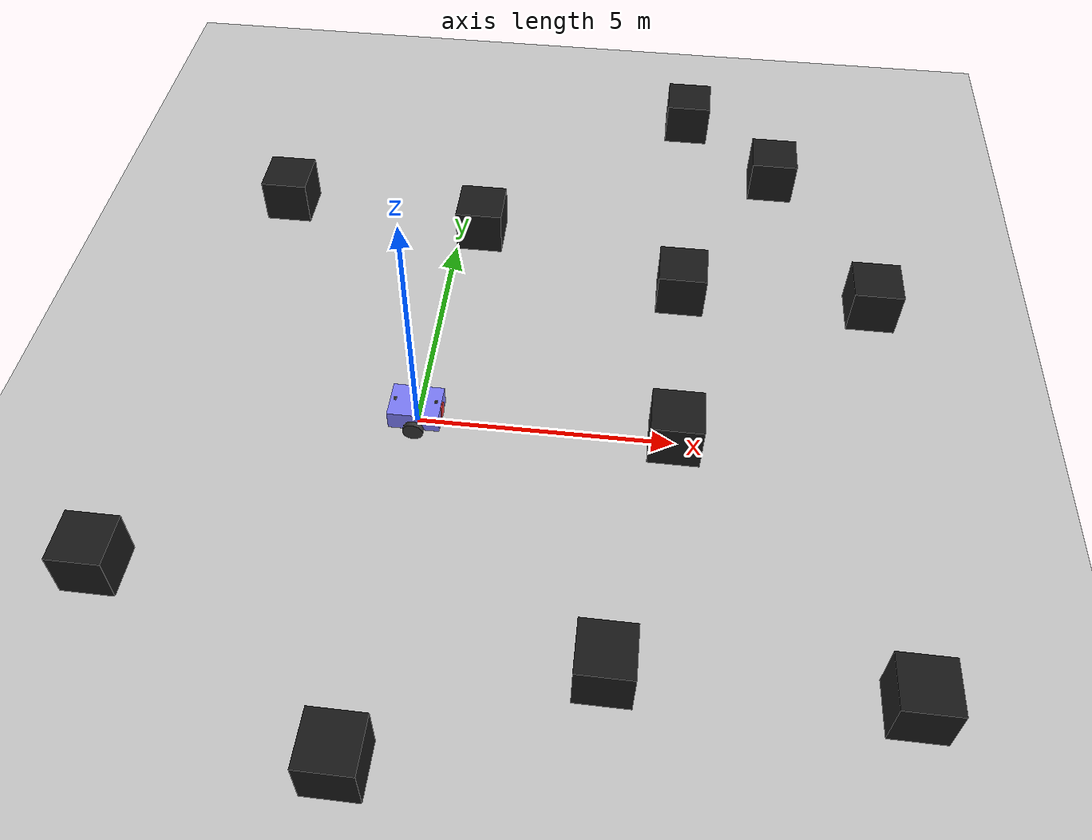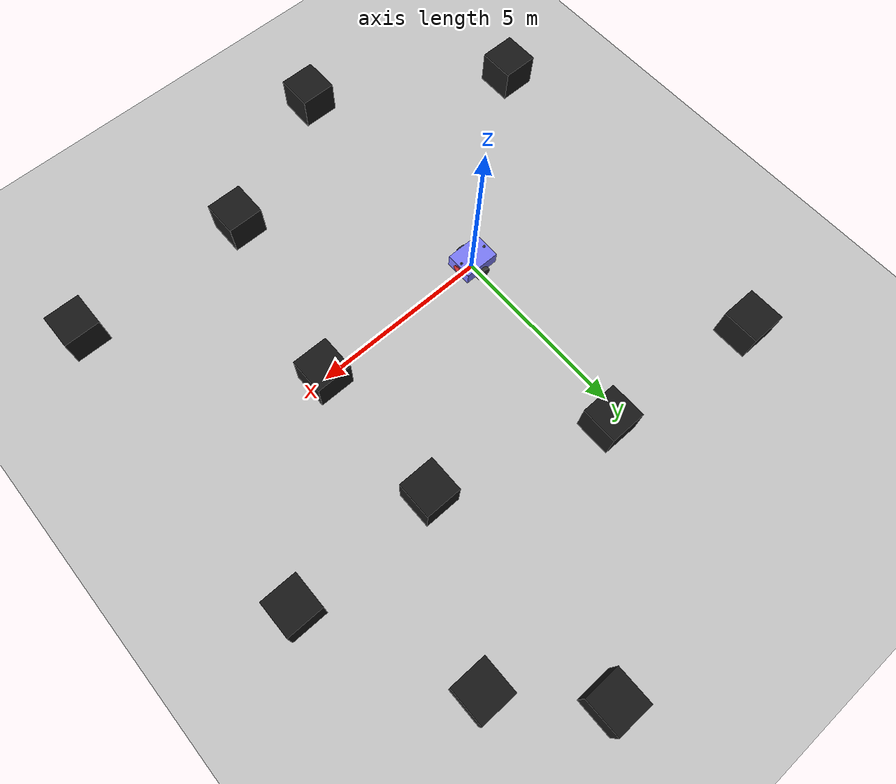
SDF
<?xml version="1.0" ?>

<sdf version='1.7'>
  <world name='demo'>

    <physics name='1ms' type='ignored'>
      <max_step_size>0.001</max_step_size>
      <real_time_factor>1</real_time_factor>
      <real_time_update_rate>1000</real_time_update_rate>
    </physics>
    <plugin name='gz::sim::systems::Physics' filename='ignition-gazebo-physics-system'/>
    <plugin name='gz::sim::systems::UserCommands' filename='ignition-gazebo-user-commands-system'/>
    <plugin name='gz::sim::systems::SceneBroadcaster' filename='ignition-gazebo-scene-broadcaster-system'/>
    <plugin name='gz::sim::systems::Contact' filename='ignition-gazebo-contact-system'/>

    <light type="directional" name="sun">
      <cast_shadows>true</cast_shadows>
      <pose>0 0 10 0 0 0</pose>
      <diffuse>1 1 1 1</diffuse>
      <specular>0.5 0.5 0.5 1</specular>
      <attenuation>
        <range>1000</range>
        <constant>0.9</constant>
        <linear>0.01</linear>
        <quadratic>0.001</quadratic>
      </attenuation>
      <direction>-0.5 0.1 -0.9</direction>
    </light>

    <model name="ground_plane">
      <static>true</static>
      <link name="link">
        <collision name="collision">
          <geometry>
            <plane>
              <normal>0 0 1</normal>
              <size>100 100</size>
            </plane>
          </geometry>
        </collision>
        <visual name="visual">
          <geometry>
            <plane>
              <normal>0 0 1</normal>
              <size>100 100</size>
            </plane>
          </geometry>
          <material>
            <ambient>0.8 0.8 0.8 1</ambient>
            <diffuse>0.8 0.8 0.8 1</diffuse>
            <specular>0.8 0.8 0.8 1</specular>
          </material>
        </visual>
      </link>
    </model>

    <!-- Vehicle -->

    <include>
      <uri>file://vehicle</uri>
      <pose>0 0 0.2 0 0 0</pose>
    </include>

    <!-- Obstacles -->

    <include>
      <uri>file://fixed_box</uri>
      <pose>5 0 0 0 0 0</pose>
      <name>box0</name>
    </include>

    <include>
      <uri>file://fixed_box</uri>
      <pose>5 4 0 0 0 0</pose>
      <name>box1</name>
    </include>

    <include>
      <uri>file://fixed_box</uri>
      <pose>5 10 0 0 0 0</pose>
      <name>box2</name>
    </include>

    <include>
      <uri>file://fixed_box</uri>
      <pose>7 8 0 0 0 0</pose>
      <name>box3</name>
    </include>

    <include>
      <uri>file://fixed_box</uri>
      <pose>4 -5 0 0 0 0</pose>
      <name>box4</name>
    </include>

    <include>
      <uri>file://fixed_box</uri>
      <pose>0 -7 0 0 0 0</pose>
      <name>box5</name>
    </include>

    <include>
      <uri>file://fixed_box</uri>
      <pose>-4 6 0 0 0 0</pose>
      <name>box6</name>
    </include>

    <include>
      <uri>file://fixed_box</uri>
      <pose>-5 -4 0 0 0 0</pose>
      <name>box7</name>
    </include>

    <include>
      <uri>file://fixed_box</uri>
      <pose>9 -5 0 0 0 0</pose>
      <name>box8</name>
    </include>

    <include>
      <uri>file://fixed_box</uri>
      <pose>9 4 0 0 0 0</pose>
      <name>box9</name>
    </include>

    <include>
      <uri>file://fixed_box</uri>
      <pose>0.5 5.5 0 0 0 0</pose>
      <name>box10</name>
    </include>

  </world>
</sdf>

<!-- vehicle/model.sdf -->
<sdf version='1.4'>
    <model name='diff_drive'>
        <pose>0 0 0.2 0 0 0</pose>

        <!--Vehicle parts-->
        <link name='chassis'>
            <pose>0 0 0.175 0 -0 0</pose>
            <inertial>
                <mass>1.14395</mass>
                <inertia>
                <ixx>0.126164</ixx>
                <ixy>0</ixy>
                <ixz>0</ixz>
                <iyy>0.416519</iyy>
                <iyz>0</iyz>
                <izz>0.481014</izz>
                </inertia>
            </inertial>
            <visual name='visual'>
                <geometry>
                <box>
                    <size>1 0.76 0.4</size>
                </box>
                </geometry>
                <material>
                <ambient>0.5 0.5 1.0 1</ambient>
                <diffuse>0.5 0.5 1.0 1</diffuse>
                <specular>0.0 0.0 1.0 1</specular>
                </material>
            </visual>
            <collision name='collision'>
                <geometry>
                <box>
                    <size>1 0.76 0.4</size>
                </box>
                </geometry>
            </collision>
        </link>

        <link name='head'>
            <pose>0.5 0 0.175 0 -1.5707 0</pose>
            <inertial>
                <mass>1.14395</mass>
                <inertia>
                <ixx>0.126164</ixx>
                <ixy>0</ixy>
                <ixz>0</ixz>
                <iyy>0.416519</iyy>
                <iyz>0</iyz>
                <izz>0.481014</izz>
                </inertia>
            </inertial>
            <visual name='visual'>
                <geometry>
                    <cylinder>
                        <radius>0.15</radius>
                        <length>0.04</length>
                    </cylinder>
                </geometry>
                <material>
                <ambient>1.0 0.25 0.25 1</ambient>
                <diffuse>1.0 0.25 0.25 1</diffuse>
                <specular>0.0 0.0 1.0 1</specular>
                </material>
            </visual>
            <collision name='collision'>
                <geometry>
                    <cylinder>
                        <radius>0.15</radius>
                        <length>0.04</length>
                    </cylinder>
                </geometry>
            </collision>
        </link>

        <link name='left_wheel'>
            <pose>0 0.43 0 -1.5707 0 0</pose>
            <inertial>
                <mass>2</mass>
                <inertia>
                <ixx>0.145833</ixx>
                <ixy>0</ixy>
                <ixz>0</ixz>
                <iyy>0.145833</iyy>
                <iyz>0</iyz>
                <izz>0.125</izz>
                </inertia>
            </inertial>
            <visual name='visual'>
                <geometry>
                    <cylinder>
                        <radius>0.2</radius>
                        <length>0.1</length>
                    </cylinder>
                </geometry>
                <material>
                    <ambient>0.2 0.2 0.2 1</ambient>
                    <diffuse>0.2 0.2 0.2 1</diffuse>
                    <specular>0.2 0.2 0.2 1</specular>
                </material>
            </visual>
            <collision name='collision'>
                <geometry>
                    <cylinder>
                        <radius>0.2</radius>
                        <length>0.1</length>
                    </cylinder>
                </geometry>
            </collision>
        </link>

        <link name='right_wheel'>
            <pose>0 -0.43 0 -1.5707 0 0</pose>
            <inertial>
                <mass>2</mass>
                <inertia>
                <ixx>0.145833</ixx>
                <ixy>0</ixy>
                <ixz>0</ixz>
                <iyy>0.145833</iyy>
                <iyz>0</iyz>
                <izz>0.125</izz>
                </inertia>
            </inertial>
            <visual name='visual'>
                <geometry>
                    <cylinder>
                            <radius>0.2</radius>
                            <length>0.1</length>
                    </cylinder>
                </geometry>
                <material>
                <ambient>0.2 0.2 0.2 1</ambient>
                <diffuse>0.2 0.2 0.2 1</diffuse>
                <specular>0.2 0.2 0.2 1</specular>
                </material>
            </visual>
            <collision name='collision'>
                <geometry>
                    <cylinder>
                        <radius>0.2</radius>
                        <length>0.1</length>
                    </cylinder>
                </geometry>
            </collision>
        </link>

        <link name='rear_caster'>
            <pose>-0.4 -0 -0.1 0 -0 0</pose>
            <inertial>
                <mass>1</mass>
                <inertia>
                <ixx>0.1</ixx>
                <ixy>0</ixy>
                <ixz>0</ixz>
                <iyy>0.1</iyy>
                <iyz>0</iyz>
                <izz>0.1</izz>
                </inertia>
            </inertial>
            <visual name='visual'>
                <geometry>
                <sphere>
                    <radius>0.1</radius>
                </sphere>
                </geometry>
                <material>
                <ambient>0.2 0.2 0.2 1</ambient>
                <diffuse>0.2 0.2 0.2 1</diffuse>
                <specular>0.2 0.2 0.2 1</specular>
                </material>
            </visual>
            <collision name='collision'>
                <geometry>
                <sphere>
                    <radius>0.1</radius>
                </sphere>
                </geometry>
            </collision>
        </link>

        <link name='front_caster'>
            <pose>0.4 -0 -0.1 0 -0 0</pose>
            <inertial>
                <mass>1</mass>
                <inertia>
                <ixx>0.1</ixx>
                <ixy>0</ixy>
                <ixz>0</ixz>
                <iyy>0.1</iyy>
                <iyz>0</iyz>
                <izz>0.1</izz>
                </inertia>
            </inertial>
            <visual name='visual'>
                <geometry>
                <sphere>
                    <radius>0.1</radius>
                </sphere>
                </geometry>
                <material>
                <ambient>0.2 0.2 0.2 1</ambient>
                <diffuse>0.2 0.2 0.2 1</diffuse>
                <specular>0.2 0.2 0.2 1</specular>
                </material>
            </visual>
            <collision name='collision'>
                <geometry>
                <sphere>
                    <radius>0.1</radius>
                </sphere>
                </geometry>
            </collision>
        </link>

        <!--Sensors-->
        <link name='front_lidar_link'>
            <pose>0.4 0 0.4 0 0 0</pose>
            <inertial>
                <mass>1.14395</mass>
                <inertia>
                <ixx>0.126164</ixx>
                <ixy>0</ixy>
                <ixz>0</ixz>
                <iyy>0.416519</iyy>
                <iyz>0</iyz>
                <izz>0.481014</izz>
                </inertia>
            </inertial>
            <visual name='visual'>
                <geometry>
                    <box>
                        <size>0.05 0.05 0.05</size>
                    </box>
                </geometry>
                <material>
                <ambient>0 0 0 1</ambient>
                <diffuse>0 0 0 1</diffuse>
                <specular>0.0 0.0 1.0 1</specular>
                </material>
            </visual>
            <collision name='collision'>
                <geometry>
                    <box>
                        <size>0.05 0.05 0.05</size>
                    </box>
                </geometry>
            </collision>

            <sensor name='front_lidar' type='gpu_lidar'>"
                <pose relative_to='front_lidar_frame'>0 0 0 0 0 0</pose>
                <topic>front_lidar</topic>
                <update_rate>10</update_rate>
                <ray>
                    <scan>
                        <horizontal>
                            <samples>640</samples>
                            <resolution>1</resolution>
                            <min_angle>-1.5707</min_angle>
                            <max_angle>1.5707</max_angle>
                        </horizontal>
                        <vertical>
                            <samples>1</samples>
                            <resolution>0.01</resolution>
                            <min_angle>0</min_angle>
                            <max_angle>0</max_angle>
                        </vertical>
                    </scan>
                    <range>
                        <min>0.08</min>
                        <max>10.0</max>
                        <resolution>0.01</resolution>
                    </range>
                </ray>
                <always_on>true</always_on>
                <visualize>true</visualize>
            </sensor>
        </link>

        <link name='rear_lidar_link'>
            <pose>-0.4 0 0.4 0 0 3.141592</pose>
            <inertial>
                <mass>1.14395</mass>
                <inertia>
                <ixx>0.126164</ixx>
                <ixy>0</ixy>
                <ixz>0</ixz>
                <iyy>0.416519</iyy>
                <iyz>0</iyz>
                <izz>0.481014</izz>
                </inertia>
            </inertial>
            <visual name='visual'>
                <geometry>
                    <box>
                        <size>0.05 0.05 0.05</size>
                    </box>
                </geometry>
                <material>
                <ambient>0 0 0 1</ambient>
                <diffuse>0 0 0 1</diffuse>
                <specular>0.0 0.0 1.0 1</specular>
                </material>
            </visual>
            <collision name='collision'>
                <geometry>
                    <box>
                        <size>0.05 0.05 0.05</size>
                    </box>
                </geometry>
            </collision>

            <sensor name='rear_lidar' type='gpu_lidar'>"
                <pose relative_to='rear_lidar_frame'>0 0 0 0 0 0</pose>
                <topic>rear_lidar</topic>
                <update_rate>10</update_rate>
                <ray>
                    <scan>
                        <horizontal>
                            <samples>640</samples>
                            <resolution>1</resolution>
                            <min_angle>-1.5707</min_angle>
                            <max_angle>1.5707</max_angle>
                        </horizontal>
                        <vertical>
                            <samples>1</samples>
                            <resolution>0.01</resolution>
                            <min_angle>0</min_angle>
                            <max_angle>0</max_angle>
                        </vertical>
                    </scan>
                    <range>
                        <min>0.08</min>
                        <max>10.0</max>
                        <resolution>0.01</resolution>
                    </range>
                </ray>
                <always_on>true</always_on>
                <visualize>true</visualize>
            </sensor>
        </link>

        <!--Vehicle joints-->
        <joint name='head_joint' type='fixed'>
            <parent>chassis</parent>
            <child>head</child>
        </joint>

        <joint name='left_wheel_joint' type='revolute'>
            <parent>chassis</parent>
            <child>left_wheel</child>
            <axis>
                <xyz>0 1 0</xyz>
                <limit>
                <lower>-1.79769e+308</lower>
                <upper>1.79769e+308</upper>
                </limit>
            </axis>
        </joint>

        <joint name='right_wheel_joint' type='revolute'>
            <parent>chassis</parent>
            <child>right_wheel</child>
            <axis>
                <xyz>0 1 0</xyz>
                <limit>
                <lower>-1.79769e+308</lower>
                <upper>1.79769e+308</upper>
                </limit>
            </axis>
        </joint>

        <joint name='rear_caster_joint' type='ball'>
            <parent>chassis</parent>
            <child>rear_caster</child>
        </joint>

        <joint name='front_caster_joint' type='ball'>
            <parent>chassis</parent>
            <child>front_caster</child>
        </joint>

        <joint name='front_lidar_joint' type='fixed'>
            <parent>chassis</parent>
            <child>front_lidar_link</child>
        </joint>

        <joint name='rear_lidar_joint' type='fixed'>
            <parent>chassis</parent>
            <child>rear_lidar_link</child>
        </joint>

        <!--Plugins-->
        <plugin
            filename="libignition-gazebo-diff-drive-system.so"
            name="ignition::gazebo::systems::DiffDrive">
            <left_joint>left_wheel_joint</left_joint>
            <right_joint>right_wheel_joint</right_joint>
            <wheel_separation>0.76</wheel_separation>
            <wheel_radius>0.15</wheel_radius>
            <odom_publish_frequency>10</odom_publish_frequency>
            <topic>cmd_vel</topic>
        </plugin>

        <plugin
            filename="libignition-gazebo-sensors-system.so"
            name="ignition::gazebo::systems::Sensors">
            <render_engine>ogre2</render_engine>
        </plugin>

        <plugin
            filename="libignition-gazebo-pose-publisher-system.so"
            name="ignition::gazebo::systems::PosePublisher">
            <publish_link_pose>true</publish_link_pose>
            <publish_collision_pose>false</publish_collision_pose>
            <publish_visual_pose>false</publish_visual_pose>
            <publish_nested_model_pose>true</publish_nested_model_pose>     <!--Publishes map-to-model-->
            <use_pose_vector_msg>true</use_pose_vector_msg>     <!--Necessary for bridge-->
            <publish_sensor_pose>true</publish_sensor_pose>
            <publish_model_pose>true</publish_model_pose>
            <update_frequency>20</update_frequency>
        </plugin>

    </model>
</sdf>

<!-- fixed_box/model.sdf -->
<sdf version='1.4'>
    <model name='fixed_box'>
        <static>true</static>
        <link name="link">
            <pose>0 0 0.5 0 0 0</pose>
            <collision name="collision">
            <geometry>
                <box>
                <size>1 1 1</size>
                </box>
            </geometry>
            </collision>
            <visual name="visual">
            <geometry>
                <box>
                <size>1 1 1</size>
                </box>
            </geometry>
            <material>
                <ambient>0.1 0.1 0.1 1</ambient>
                <diffuse>0.1 0.1 0.1 1</diffuse>
                <specular>0.1 0.1 0.1 1</specular>
            </material>
            </visual>
        </link>

    </model>
</sdf>
